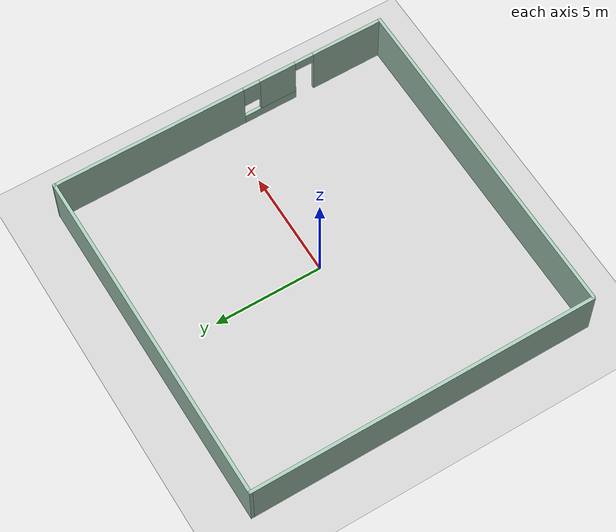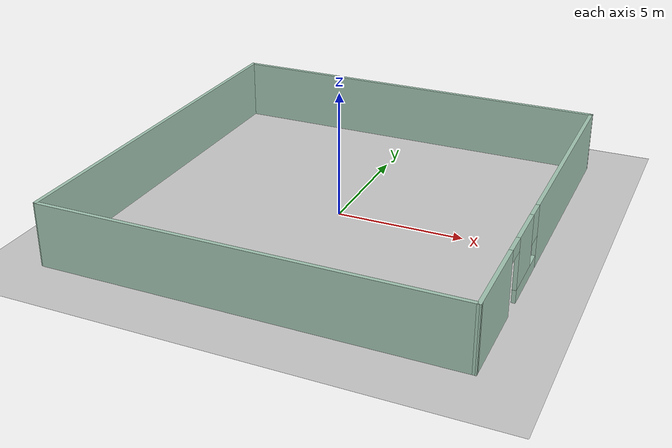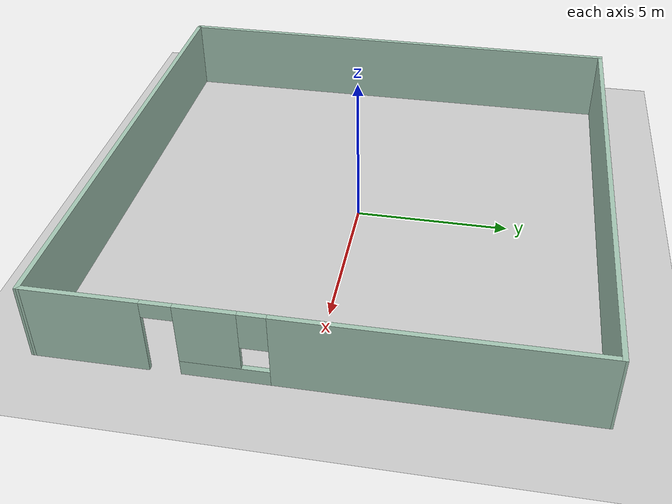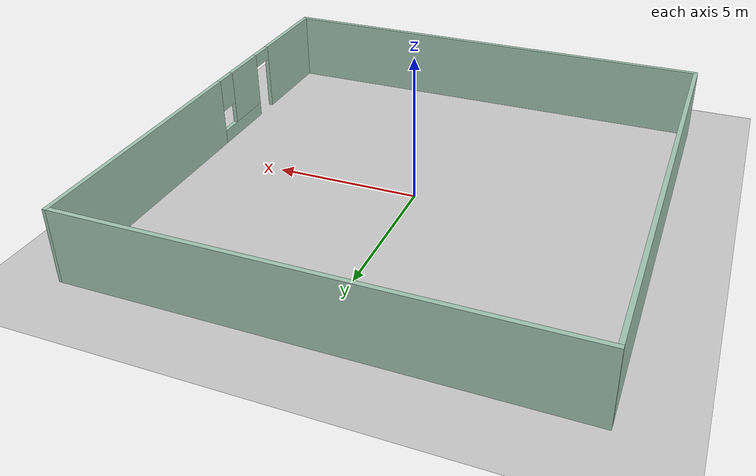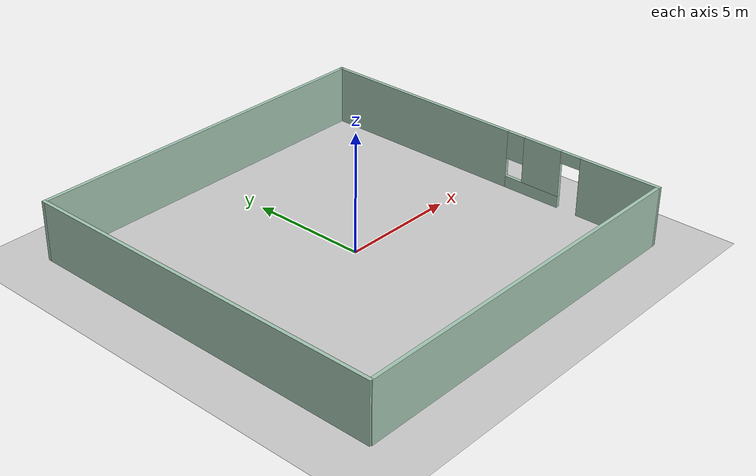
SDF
<sdf version="1.7">
 <world name="basic_world">
  <light name="sun" type="directional">
   <pose>0 0 10 0 -0 0</pose>
   <diffuse>0.8 0.8 0.8 1</diffuse>
   <specular>0.2 0.2 0.2 1</specular>
   <attenuation>
    <range>1000</range>
    <constant>0.9</constant>
    <linear>0.01</linear>
    <quadratic>0.001</quadratic>
   </attenuation>
   <direction>-0.5 0.1 -0.9</direction>
   <spot><inner_angle>0</inner_angle><outer_angle>0</outer_angle><falloff>0</falloff></spot>
  </light>
  <model name="ground_plane">
   <static>1</static>
   <link name="link">
    <collision name="collision">
     <geometry><plane><normal>0 0 1</normal><size>100 100</size></plane></geometry>
     <surface>
      <contact><collide_bitmask>65535</collide_bitmask></contact>
      <friction><ode><mu>100</mu><mu2>50</mu2></ode></friction>
     </surface>
    </collision>
    <visual name="visual">
     <cast_shadows>0</cast_shadows>
     <geometry><plane><normal>0 0 1</normal><size>100 100</size></plane></geometry>
     <material>
      <script><uri>file://media/materials/scripts/gazebo.material</uri><name>Gazebo/Grey</name></script>
     </material>
    </visual>
   </link>
  </model>
  <gravity>0 0 -9.8</gravity>
  <magnetic_field>6e-06 2.3e-05 -4.2e-05</magnetic_field>
  <atmosphere type="adiabatic"/>
  <physics type="ode">
   <max_step_size>0.001</max_step_size>
   <real_time_factor>1</real_time_factor>
   <real_time_update_rate>1000</real_time_update_rate>
  </physics>
  <scene><ambient>0.4 0.4 0.4 1</ambient><background>0.7 0.7 0.7 1</background><shadows>1</shadows></scene>
  <spherical_coordinates>
   <surface_model>EARTH_WGS84</surface_model>
   <latitude_deg>0</latitude_deg>
   <longitude_deg>0</longitude_deg>
   <elevation>0</elevation>
   <heading_deg>0</heading_deg>
  </spherical_coordinates>
  <model name="basic">
   <pose>-0.023308 0.047508 0 0 -0 0</pose>
   <link name="Wall_10">
    <collision name="Wall_10_Collision">
     <geometry><box><size>16 0.15 2.5</size></box></geometry>
     <pose>0 0 1.25 0 -0 0</pose>
    </collision>
    <visual name="Wall_10_Visual">
     <pose>0 0 1.25 0 -0 0</pose>
     <geometry><box><size>16 0.15 2.5</size></box></geometry>
     <material>
      <script><uri>file://media/materials/scripts/gazebo.material</uri><name>Gazebo/Grey</name></script>
      <ambient>0.643137 0.780392 0.705882 1</ambient>
     </material>
     <meta><layer>0</layer></meta>
    </visual>
    <pose>-0.034946 7.94239 0 0 -0 3.14159</pose>
   </link>
   <link name="Wall_11">
    <collision name="Wall_11_Collision">
     <geometry><box><size>16 0.15 2.5</size></box></geometry>
     <pose>0 0 1.25 0 -0 0</pose>
    </collision>
    <visual name="Wall_11_Visual">
     <pose>0 0 1.25 0 -0 0</pose>
     <geometry><box><size>16 0.15 2.5</size></box></geometry>
     <material>
      <script><uri>file://media/materials/scripts/gazebo.material</uri><name>Gazebo/Grey</name></script>
      <ambient>0.643137 0.780392 0.705882 1</ambient>
     </material>
     <meta><layer>0</layer></meta>
    </visual>
    <pose>-7.95995 0.017391 0 0 -0 -1.5708</pose>
   </link>
   <link name="Wall_14">
    <pose>7.92484 0 0 0 -0 -1.56642</pose>
    <visual name="Wall_14_Visual_0">
     <pose>-3.47016 0 1.25 0 -0 0</pose>
     <geometry><box><size>9.0948 0.15 2.5</size></box></geometry>
     <material>
      <script><uri>file://media/materials/scripts/gazebo.material</uri><name>Gazebo/Grey</name></script>
      <ambient>0.643137 0.780392 0.705882 1</ambient>
     </material>
     <meta><layer>0</layer></meta>
    </visual>
    <collision name="Wall_14_Collision_0">
     <geometry><box><size>9.0948 0.15 2.5</size></box></geometry>
     <pose>-3.47016 0 1.25 0 -0 0</pose>
    </collision>
    <visual name="Wall_14_Visual_1">
     <pose>6.2727 0 1.25 0 -0 0</pose>
     <geometry><box><size>3.48973 0.15 2.5</size></box></geometry>
     <material>
      <script><uri>file://media/materials/scripts/gazebo.material</uri><name>Gazebo/Grey</name></script>
      <ambient>0.643137 0.780392 0.705882 1</ambient>
     </material>
     <meta><layer>0</layer></meta>
    </visual>
    <collision name="Wall_14_Collision_1">
     <geometry><box><size>3.48973 0.15 2.5</size></box></geometry>
     <pose>6.2727 0 1.25 0 -0 0</pose>
    </collision>
    <visual name="Wall_14_Visual_2">
     <pose>2.35253 0 0.25 0 -0 0</pose>
     <geometry><box><size>2.55059 0.15 0.5</size></box></geometry>
     <material>
      <script><uri>file://media/materials/scripts/gazebo.material</uri><name>Gazebo/Grey</name></script>
      <ambient>0.643137 0.780392 0.705882 1</ambient>
     </material>
     <meta><layer>0</layer></meta>
    </visual>
    <collision name="Wall_14_Collision_2">
     <geometry><box><size>2.55059 0.15 0.5</size></box></geometry>
     <pose>2.35253 0 0.25 0 -0 0</pose>
    </collision>
    <visual name="Wall_14_Visual_3">
     <pose>2.75253 0 1.5 0 -0 0</pose>
     <geometry><box><size>1.75059 0.15 2</size></box></geometry>
     <material>
      <script><uri>file://media/materials/scripts/gazebo.material</uri><name>Gazebo/Grey</name></script>
      <ambient>0.643137 0.780392 0.705882 1</ambient>
     </material>
     <meta><layer>0</layer></meta>
    </visual>
    <collision name="Wall_14_Collision_3">
     <geometry><box><size>1.75059 0.15 2</size></box></geometry>
     <pose>2.75253 0 1.5 0 -0 0</pose>
    </collision>
    <visual name="Wall_14_Visual_4">
     <pose>1.47724 0 1.9 0 -0 0</pose>
     <geometry><box><size>0.8 0.15 1.2</size></box></geometry>
     <material>
      <script><uri>file://media/materials/scripts/gazebo.material</uri><name>Gazebo/Grey</name></script>
      <ambient>0.643137 0.780392 0.705882 1</ambient>
     </material>
     <meta><layer>0</layer></meta>
    </visual>
    <collision name="Wall_14_Collision_4">
     <geometry><box><size>0.8 0.15 1.2</size></box></geometry>
     <pose>1.47724 0 1.9 0 -0 0</pose>
    </collision>
    <visual name="Wall_14_Visual_5">
     <pose>4.07783 0 2.25 0 -0 0</pose>
     <geometry><box><size>0.9 0.15 0.5</size></box></geometry>
     <material>
      <script><uri>file://media/materials/scripts/gazebo.material</uri><name>Gazebo/Grey</name></script>
      <ambient>0.643137 0.780392 0.705882 1</ambient>
     </material>
     <meta><layer>0</layer></meta>
    </visual>
    <collision name="Wall_14_Collision_5">
     <geometry><box><size>0.9 0.15 0.5</size></box></geometry>
     <pose>4.07783 0 2.25 0 -0 0</pose>
    </collision>
   </link>
   <link name="Wall_15">
    <collision name="Wall_15_Collision">
     <geometry><box><size>16 0.15 2.5</size></box></geometry>
     <pose>0 0 1.25 0 -0 0</pose>
    </collision>
    <visual name="Wall_15_Visual">
     <pose>0 0 1.25 0 -0 0</pose>
     <geometry><box><size>16 0.15 2.5</size></box></geometry>
     <material>
      <script><uri>file://media/materials/scripts/gazebo.material</uri><name>Gazebo/Grey</name></script>
      <ambient>0.643137 0.780392 0.705882 1</ambient>
     </material>
     <meta><layer>0</layer></meta>
    </visual>
    <pose>0.034619 -7.94239 0 0 -0 3.14159</pose>
   </link>
   <static>1</static>
  </model>
 </world>
</sdf>
